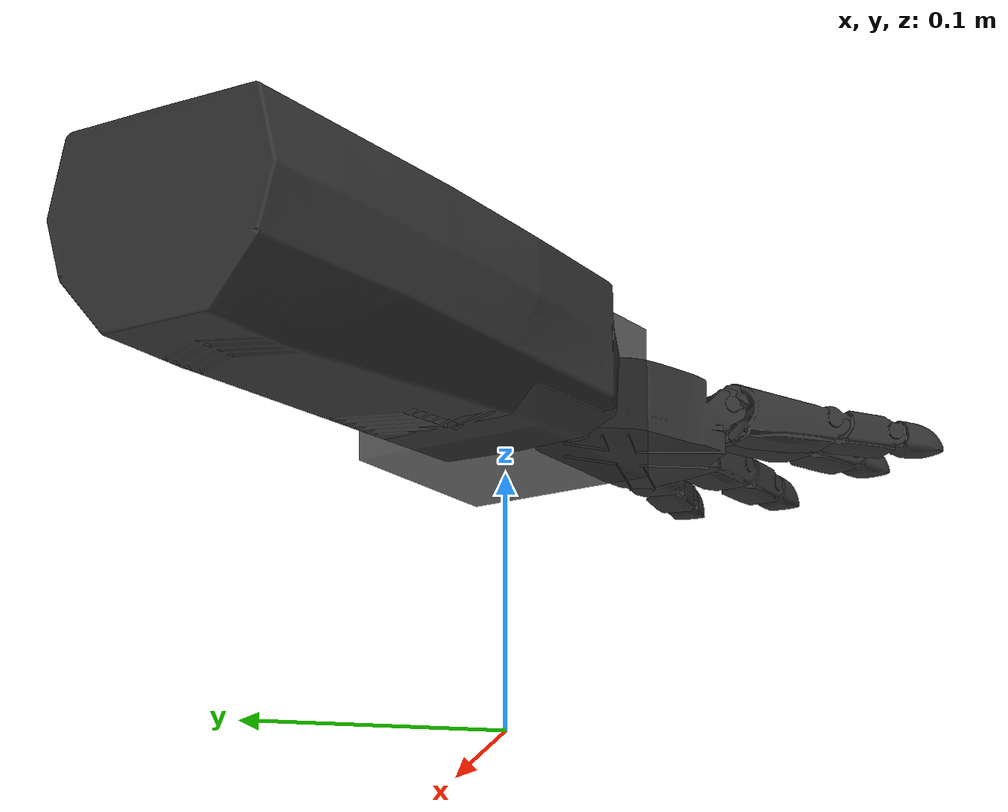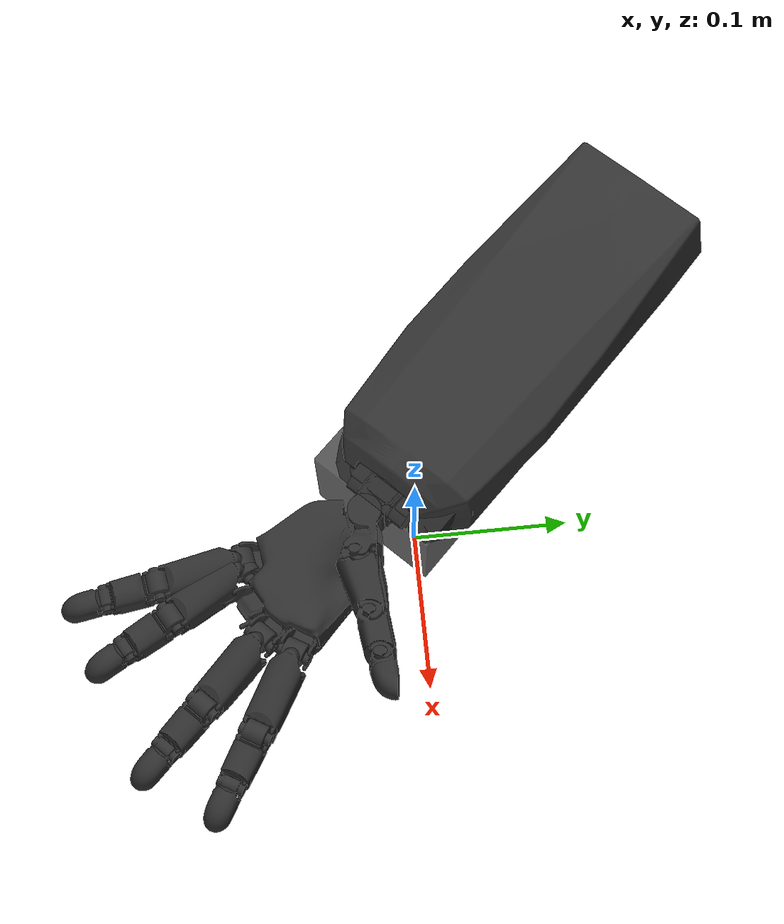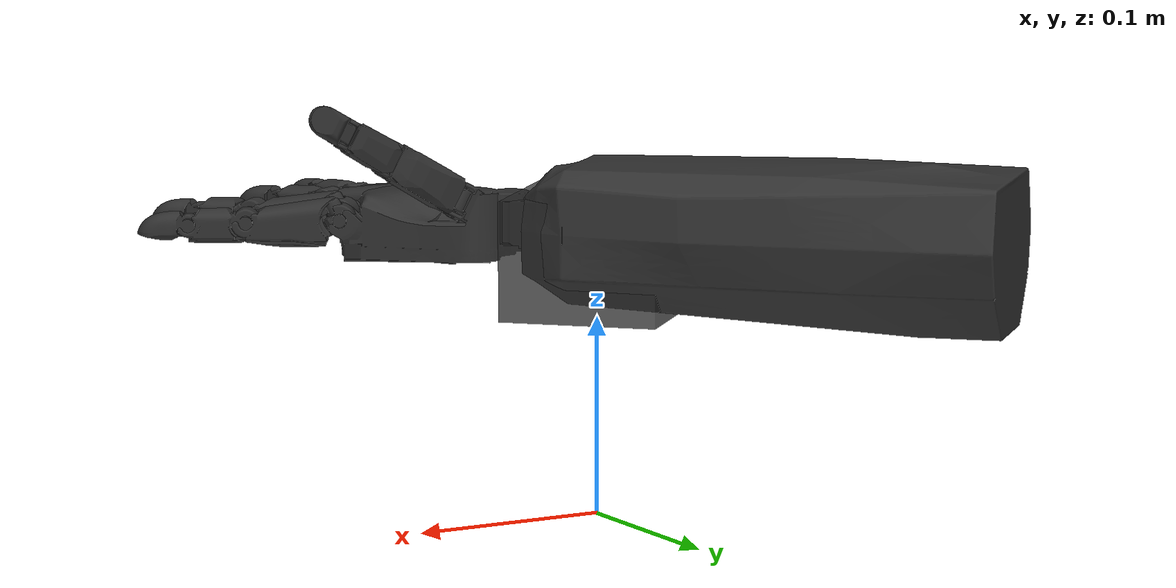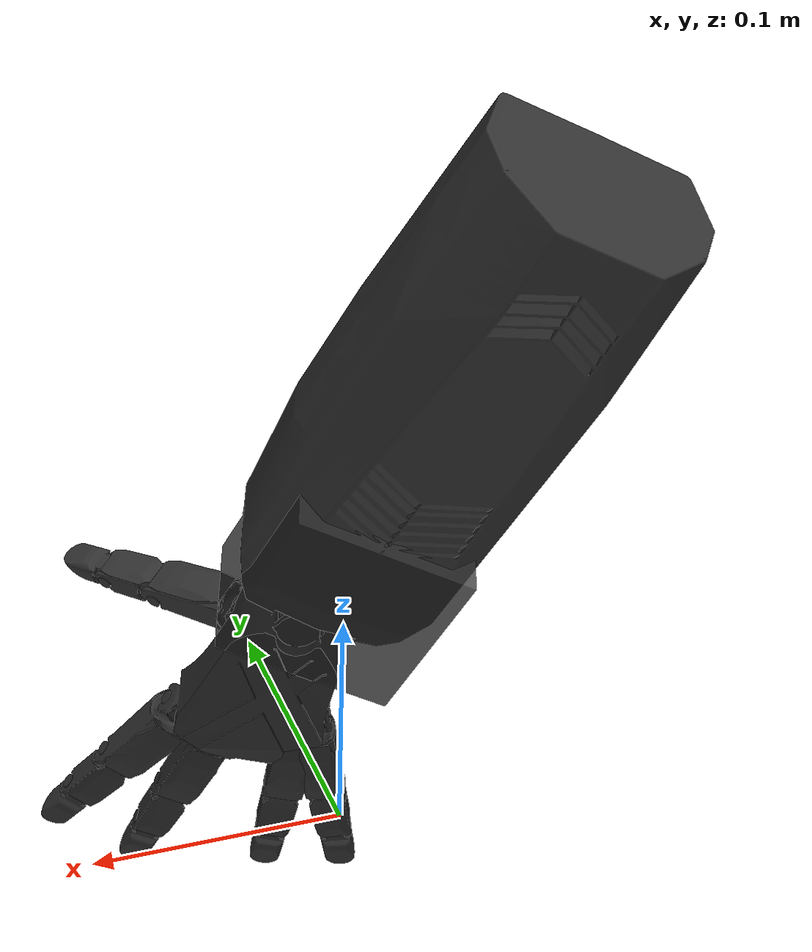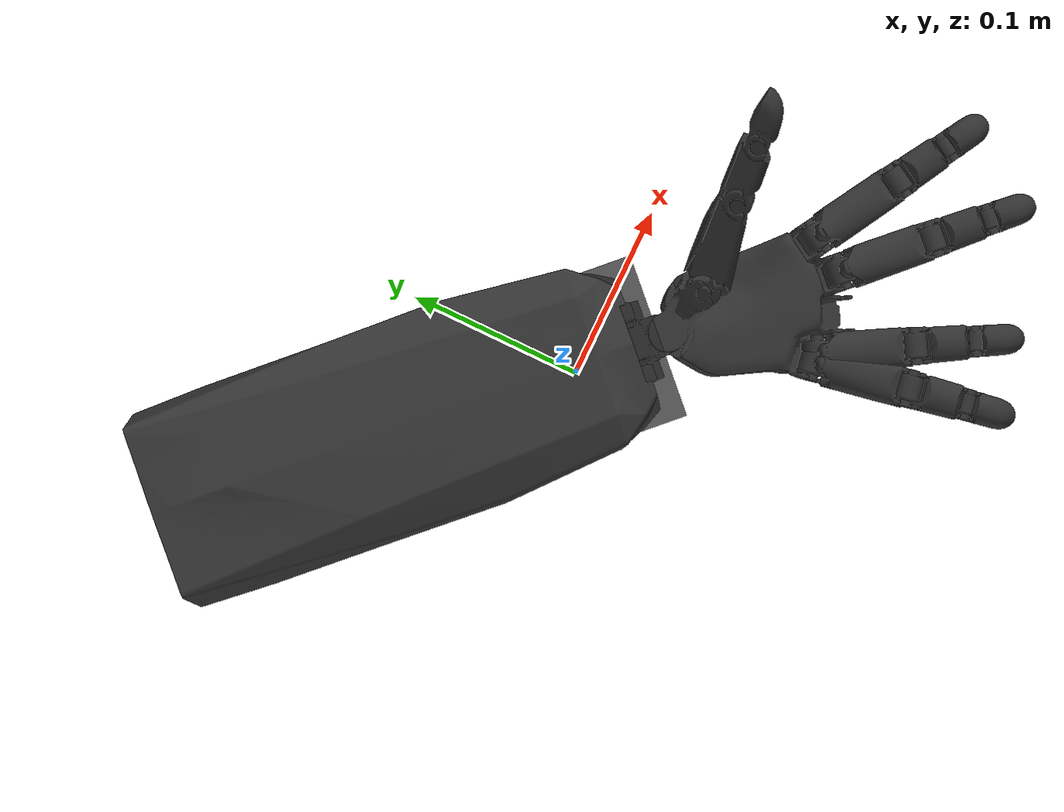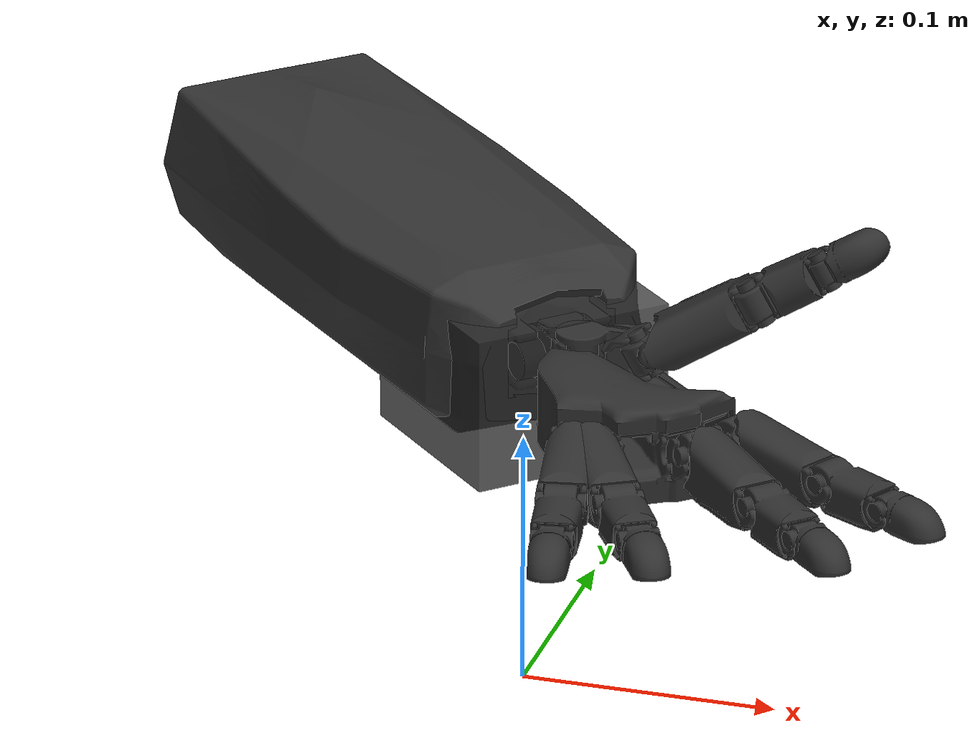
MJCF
<mujoco model="dphand_hand">
  <compiler angle="radian" autolimits="true"/>
  <option cone="elliptic" gravity="0 0 -9.81" impratio="10" timestep="0.002" solver="Newton" iterations="50"/>

  <default>
    <default class="plastic">
      <geom solimp="0.5 0.99 0.0001" solref="0.005 1" type="mesh" material="black"/>
    </default>
    <default class="jointconfig">
      <joint axis="1 0 0" damping="0.01" armature="0.0002" frictionloss="0.01"/>
    </default>
    <default class="DIPCtrl">
      <joint range="0 1.22173"/>
      <position kp="0.2" dampratio="0.9" ctrlrange="0 1.22173" forcerange="-20.0 20.0"/>
    </default>
    <default class="PIPCtrl">
      <joint range="0 1.919862"/>
      <position kp="0.2" dampratio="0.9" ctrlrange="0 1.919862" forcerange="-20.063 20.063"/>
    </default>
    <default class="MCPCtrl">
      <joint range="-0.523599 1.570796"/>
      <position kp="0.2" dampratio="0.9" ctrlrange="-0.523599 1.570796" forcerange="-40.83 40.83"/>
    </default>
    <default class="MCP2Ctrl">
      <joint range="-0.610865 0.610865"/>
      <position kp="0.2" dampratio="0.9" ctrlrange="-0.610865 0.610865" forcerange="-20.45 20.45"/>
    </default>
  </default>

  <asset>
    <material name="black" rgba="0.1882 0.1882 0.1882 1"/>
    <material name="transparent_black" rgba="0.2 0.2 0.2 1" specular="0.5" shininess="0.25"/>

    <mesh name="Forearm" file="dphand/meshes_obj/Forearm.obj" scale="0.001 0.001 0.001"/>
    <mesh name="Wrist" file="dphand/meshes_obj/Wrist.obj" scale="0.001 0.001 0.001"/>
    <mesh name="Palm" file="dphand/meshes_obj/Palm.obj" scale="0.001 0.001 0.001"/>

    <mesh name="Thumb-MCP" file="dphand/meshes_obj/MCP.obj" scale="0.001 0.001 0.001"/>
    <mesh name="Thumb-PP" file="dphand/meshes_obj/PP.obj" scale="0.001 0.001 0.001"/>
    <mesh name="Thumb-PM" file="dphand/meshes_obj/PM.obj" scale="0.001 0.001 0.001"/>
    <mesh name="Thumb-PD" file="dphand/meshes_obj/PD.obj" scale="0.001 0.001 0.001"/>

    <mesh name="Index-MCP" file="dphand/meshes_obj/MCP.obj" scale="0.001 0.001 0.001"/>
    <mesh name="Index-PP" file="dphand/meshes_obj/PP.obj" scale="0.001 0.001 0.001"/>
    <mesh name="Index-PM" file="dphand/meshes_obj/PM.obj" scale="0.001 0.001 0.001"/>
    <mesh name="Index-PD" file="dphand/meshes_obj/PD.obj" scale="0.001 0.001 0.001"/>

    <mesh name="Middle-MCP" file="dphand/meshes_obj/MCP.obj" scale="0.001 0.001 0.001"/>
    <mesh name="Middle-PP" file="dphand/meshes_obj/PP.obj" scale="0.001 0.001 0.001"/>
    <mesh name="Middle-PM" file="dphand/meshes_obj/PM.obj" scale="0.001 0.001 0.001"/>
    <mesh name="Middle-PD" file="dphand/meshes_obj/PD.obj" scale="0.001 0.001 0.001"/>

    <mesh name="Ring-MCP" file="dphand/meshes_obj/MCP.obj" scale="0.001 0.001 0.001"/>
    <mesh name="Ring-PP" file="dphand/meshes_obj/PP.obj" scale="0.001 0.001 0.001"/>
    <mesh name="Ring-PM" file="dphand/meshes_obj/PM.obj" scale="0.001 0.001 0.001"/>
    <mesh name="Ring-PD" file="dphand/meshes_obj/PD.obj" scale="0.001 0.001 0.001"/>

    <mesh name="Little-MCP" file="dphand/meshes_obj/MCP.obj" scale="0.001 0.001 0.001"/>
    <mesh name="Little-PP" file="dphand/meshes_obj/PP.obj" scale="0.001 0.001 0.001"/>
    <mesh name="Little-PM" file="dphand/meshes_obj/PM.obj" scale="0.001 0.001 0.001"/>
    <mesh name="Little-PD" file="dphand/meshes_obj/PD.obj" scale="0.001 0.001 0.001"/>
  </asset>

  <worldbody>
    <light directional="true" pos="-0.5 0.5 5" dir="0 0 -1"/>
    <camera name="overview" pos="0.0 -0.6 0.4" quat="0.707 0 0 0.707" fovy="80"/>

    <body name="attachment" pos="0 0 0" quat="0.3826834 0 0 0.9238795">
      <site name="pinch" pos="0 0 0.147" euler="0 3.14159 -1.5708"/>
      <geom type="box" size="0.01 0.01 0.01" rgba="1.0 0.0 0.0 0.0"/>

      <body name="Forearm" pos="0.107 0 0.147" euler="3.14159 0 1.5708">
        <geom class="plastic" type="mesh" mesh="Forearm" material="transparent_black"/>
        <inertial mass="1.9453304463125118" pos="-2.6615378024531148e-08 0.009019289013986305 0.0032088635623812897" fullinertia="0.009066690743886285 0.002094541290341062 0.00960327727265748 -6.786222020669816e-09 -1.1843581789473546e-09 8.685478979449512e-05"/>

        <body name="Wrist" pos="-5.329070518200751e-17 0.13654999999999984 -1.7763568394002505e-17" euler="-3.141592653589793 7.41212194690677e-32 -3.141592653589793">
          <joint class="jointconfig" name="Forearm_Wrist-Flexion" type="hinge" axis="0.9999999999999922 -8.887205207863613e-16 -4.3835946866997966e-16" pos="0.020000023862298447 1.7202427902594974e-07 1.7511521353289145e-07" range="-1.047198 1.047198" damping="2.0"/>
          <geom type="box" pos="0 -0.03 -0.015" size="0.04 0.04 0.03" rgba="0.2 0.2 0.2 0.8"/>
          <geom class="plastic" type="mesh" mesh="Wrist"/>
          <inertial mass="0.02656214079320285" pos="-1.69243593868272e-07 0.0016472458767444085 -1.6800554081391377e-06" fullinertia="2.0813142204422996e-06 4.359133919833236e-06 3.936873235039729e-06 -4.4040114384845307e-11 -1.131996854421492e-08 -5.300701354629199e-10"/>
          <camera name="wrist_cam" pos="0.0 -0.05 0.06" euler="1.5708 0 0" fovy="90"/>

          <body name="Palm" pos="0.01129099357241001 0.07971340504264361 0.043586459565069006" euler="3.141592653589793 -5.645033986231014e-06 -3.141592653589793">
            <joint class="jointconfig" name="Wrist_Wrist-Abduction" type="hinge" axis="5.645033985756887e-06 3.1918911957973315e-16 -0.9999999999840592" pos="0.011290782654479357 -0.06471323301836342 0.033136348187234654" range="-0.872665 0.523599" damping="0.1"/>
            <geom class="plastic" type="mesh" mesh="Palm"/>
            <inertial mass="0.2602111705177352" pos="0.008366751647868122 -0.02196163963553714 0.050750200275004716" fullinertia="0.00016809656398654498 9.383212552094538e-05 0.0002082113956576322 3.3379116774949452e-06 -8.329607410925668e-07 -6.439751497203951e-06"/>

            <body name="Thumb-MCP" pos="0.06646453612762752 -0.006132543067662581 0.23216861852976048" euler="0.8433678826770468 -0.7227359898922351 1.0799202183467054">
              <joint class="jointconfig" name="Palm_Thumb-MCP-Flexion" type="hinge" axis="0.9999993741212565 -1.9773373993725585e-08 2.7577507161202774e-07" pos="-0.19100048404368228 0.008500111311707255 -0.05328147048432252" range="-0.523599 1.570796"/>
              <geom class="plastic" type="mesh" mesh="Thumb-MCP"/>
              <inertial mass="0.005036994326199342" pos="-0.20000003939517735 0.00771726400998568 -0.05238245453895492" fullinertia="1.2970868632662727e-07 1.6007173878014266e-07 1.5900576781080497e-07 1.9696295556984942e-13 -5.666079262914197e-13 -1.4577138745808807e-08"/>

              <body name="Thumb-PP" pos="-0.1999099137026213 -8.975787161681125e-05 -0.09186663199430434" euler="1.5707964398014924 -4.440892098500623e-16 -3.1415926535897927">
                <joint class="jointconfig" name="Thumb-MCP_Thumb-MCP-Abduction" type="hinge" axis="1.2682376226980097e-07 -0.4999997811126733 0.8660249336764163" pos="9.00146861002862e-05 -0.03683519983393464 -0.011620692906578887" range="-0.610865 0.610865"/>
                <geom class="plastic" type="mesh" mesh="Thumb-PP"/>
                <inertial mass="0.03708856624254697" pos="9.030301616385424e-05 -0.014531198977560479 -0.005880351460123734" fullinertia="5.753639912619248e-06 2.3941975919820493e-06 5.462290746232934e-06 -1.8478345177537705e-10 -9.173268363720042e-11 -6.425808363890366e-07"/>

                <body name="Thumb-PM" pos="9.00862973793437e-05 0.0006333688633876378 -8.975695249269222e-05" euler="1.570796326794897 -3.885780586188048e-16 -3.1415926535897922">
                  <joint class="jointconfig" name="Thumb-PP_Thumb-PIP-Flexion" type="hinge" axis="0.9999993741212565 -1.9773343240547803e-08 2.757750738047182e-07" pos="0.009000053397670283 0.007500012297346963 -0.007499959122900093" range="0 1.919862"/>
                  <geom class="plastic" type="mesh" mesh="Thumb-PM"/>
                  <inertial mass="0.020227223379927373" pos="-1.848580694421842e-07 0.005195827579475683 -0.0187189494907972" fullinertia="1.9967071755990337e-06 2.0011051517931557e-06 8.144475144013871e-07 -8.221468741961615e-12 3.2138099137484784e-12 -1.7160624501976697e-07"/>

                  <body name="Thumb-PD" pos="2.0428103653102883e-15 0.006000000000000014 -0.030374007257449022" euler="-0.0 -5.30131494258512e-15 1.6653345369377338e-16">
                    <joint class="jointconfig" name="Thumb-PM_Thumb-DIP-Flexion" type="hinge" axis="0.9999993741212571 -1.9773343351570105e-08 2.7577506855891443e-07" pos="0.007500185506918168 -1.0135717486668694e-08 -0.005999648442277302" range="0 1.22173"/>
                    <geom class="plastic" type="mesh" mesh="Thumb-PD"/>
                    <inertial mass="0.008221233655296712" pos="4.78256383562841e-06 -0.001059520123761583 -0.014235123790328312" fullinertia="5.898243383359009e-07 6.159934754370924e-07 2.2995080143593457e-07 -4.951643830232875e-11 -3.519078467407562e-10 -5.015937733979458e-08"/>
                    <camera name="thumb_tip_cam" pos="0 0.005 -0.02" quat="0.7071068 0.7071068 0 0" fovy="90"/>
                  </body>
                </body>
              </body>
            </body>

            <body name="Index-MCP" pos="-0.17611858726643287 0.01860627582114212 0.0520866274849916" euler="1.5707752592412532 -0.2617993878586258 -3.141592653589793">
              <joint class="jointconfig" name="Palm_Index-MCP-Flexion" type="hinge" axis="1.0000001561184753 1.9302374834874957e-12 8.852540064885339e-08" pos="-0.1910001700693438 0.00850017511903284 -0.05328168114121647" range="-0.523599 1.570796"/>
              <geom class="plastic" type="mesh" mesh="Index-MCP"/>
              <inertial mass="0.005036994326199342" pos="-0.20000003939517752 0.007717264009985939 -0.052382454538954695" fullinertia="1.297086863268387e-07 1.6007173878164116e-07 1.5900576781229262e-07 1.9696271334408768e-13 -5.666087175359978e-13 -1.4577138745714998e-08"/>

              <body name="Index-PP" pos="-0.19990991370262104 -8.975787161696003e-05 -0.09186663199430434" euler="1.5707964398014924 -6.468858380816871e-16 -3.141592653589793">
                <joint class="jointconfig" name="Index-MCP_Index-MCP-Abduction" type="hinge" axis="-2.6781389336760775e-07 -0.5000005133392491 0.8660250383253366" pos="8.999934378633653e-05 -0.03683495104841343 -0.011620898985207259" range="-0.610865 0.610865"/>
                <geom class="plastic" type="mesh" mesh="Index-PP"/>
                <inertial mass="0.03708856624254697" pos="9.030301616390303e-05 -0.014531198977560611 -0.005880351460123762" fullinertia="5.753639912618303e-06 2.3941975919821154e-06 5.4622907462326845e-06 -1.8478345217030616e-10 -9.17326836966934e-11 -6.425808363889253e-07"/>

                <body name="Index-PM" pos="9.008629737936147e-05 0.0006333688633875312 -8.97569524926678e-05" euler="1.5707963267948966 1.1102230246251568e-16 -3.1415926535897927">
                  <joint class="jointconfig" name="Index-PP_Index-PIP-Flexion" type="hinge" axis="1.0000001561184766 1.9402182929335594e-12 8.852540045456436e-08" pos="0.009000288994289127 0.007500156170805646 -0.007499409252653209" range="0 1.919862"/>
                  <geom class="plastic" type="mesh" mesh="Index-PM"/>
                  <inertial mass="0.020227223379927373" pos="-1.848580693832036e-07 0.005195827579475731 -0.01871894949079733" fullinertia="1.9967071755979597e-06 2.0011051517931565e-06 8.144475144015177e-07 -8.221468830239125e-12 3.2138093862587105e-12 -1.716062450195863e-07"/>

                  <body name="Index-PD" pos="1.838529328779259e-15 0.005999999999999879 -0.030374007257448526" euler="4.1619810896287264e-17 -5.8009153036664374e-15 5.659365933784879e-17">
                    <joint class="jointconfig" name="Index-PM_Index-DIP-Flexion" type="hinge" axis="1.000000156118477 1.9401617001212545e-12 8.852539465364906e-08" pos="0.007500340150546129 -4.768566481272736e-07 -0.005999444697657891" range="0 1.22173"/>
                    <geom class="plastic" type="mesh" mesh="Index-PD"/>
                    <inertial mass="0.008221233655296712" pos="4.782563835702136e-06 -0.0010595201237615741 -0.014235123790328466" fullinertia="5.898243383354302e-07 6.159934754366981e-07 2.2995080143603772e-07 -4.951643833947085e-11 -3.519078468321299e-10 -5.0159377339789395e-08"/>
                    <camera name="index_tip_cam" pos="0 -0.015 0" quat="0.7071068 0.7071068 0 0" fovy="90"/>
                  </body>
                </body>
              </body>
            </body>

            <body name="Middle-MCP" pos="-0.18870930045441625 -0.029730502816816086 0.052085394207460056" euler="1.5707963284469457 -1.915701280528547e-18 -3.141587008555807">
              <joint class="jointconfig" name="Palm_Middle-MCP-Flexion" type="hinge" axis="0.9999999999999927 -5.144259135054388e-16 1.0216509586550925e-14" pos="-0.190999976137697 0.00850017511521407 -0.053282269784410745" range="-0.523599 1.570796"/>
              <geom class="plastic" type="mesh" mesh="Middle-MCP"/>
              <inertial mass="0.005036994326199342" pos="-0.20000003939517802 0.00771726400998593 -0.052382454538954855" fullinertia="1.2970868632693096e-07 1.6007173878119713e-07 1.590057678117707e-07 1.9696273647388832e-13 -5.66608568171624e-13 -1.4577138745737425e-08"/>

              <body name="Middle-PP" pos="-0.1999099137026208 -8.97578716168801e-05 -0.09186663199430463" euler="1.5707964398014933 -1.6303776237407785e-15 3.141592653589792">
                <joint class="jointconfig" name="Middle-MCP_Middle-MCP-Abduction" type="hinge" axis="2.108308406328883e-15 -0.5000000964358128 0.8660249443227128" pos="9.006243507892484e-05 -0.03683436090165744 -0.011620937152247808" range="-0.610865 0.610865"/>
                <geom class="plastic" type="mesh" mesh="Middle-PP"/>
                <inertial mass="0.03708856624254697" pos="9.030301616385639e-05 -0.014531198977560526 -0.005880351460123758" fullinertia="5.753639912620901e-06 2.3941975919821687e-06 5.4622907462329505e-06 -1.8478345192100178e-10 -9.173268371915364e-11 -6.425808363889447e-07"/>

                <body name="Middle-PM" pos="9.008629737941476e-05 0.0006333688633878154 -8.975695249266335e-05" euler="1.570796326794896 3.5060138694304263e-15 3.141592653589793">
                  <joint class="jointconfig" name="Middle-PP_Middle-PIP-Flexion" type="hinge" axis="0.9999999999999915 1.2523998844324682e-15 8.290647917111368e-15" pos="0.009000023862300784 0.007500175192364041 -0.00750026978608391" range="0 1.919862"/>
                  <geom class="plastic" type="mesh" mesh="Middle-PM"/>
                  <inertial mass="0.020227223379927373" pos="-1.848580693926345e-07 0.005195827579475707 -0.018718949490797342" fullinertia="1.9967071755999316e-06 2.001105151793533e-06 8.14447514401632e-07 -8.221468839957543e-12 3.2138097021157473e-12 -1.716062450195371e-07"/>

                  <body name="Middle-PD" pos="1.936228954946273e-15 0.00599999999999997 -0.03037400725744824" euler="-1.5265541442305315e-16 -5.723529200691246e-15 2.7755575612648e-17">
                    <joint class="jointconfig" name="Middle-PM_Middle-DIP-Flexion" type="hinge" axis="0.9999999999999903 1.224644308819821e-15 2.567118716420166e-15" pos="0.007500023862299049 1.719771129834434e-07 -0.0060002623616039015" range="0 1.22173"/>
                    <geom class="plastic" type="mesh" mesh="Middle-PD"/>
                    <inertial mass="0.008221233655296712" pos="4.782563835693732e-06 -0.0010595201237615774 -0.014235123790328407" fullinertia="5.8982433833592e-07 6.159934754369468e-07 2.2995080143610427e-07 -4.9516438339518763e-11 -3.5190784665454645e-10 -5.0159377339798586e-08"/>
                    <camera name="middle_tip_cam" pos="0 -0.015 0" quat="0.7071068 0.7071068 0 0" fovy="90"/>
                  </body>
                </body>
              </body>
            </body>

            <body name="Ring-MCP" pos="-0.20147084220365745 -0.10286936134224058 0.05208510939768224" euler="1.5707753065634405 0.2617993249388581 3.141592653589791">
              <joint class="jointconfig" name="Palm_Ring-MCP-Flexion" type="hinge" axis="1.0000001561184746 1.9219566936324e-12 -8.852537845319954e-08" pos="-0.1909997770478287 0.00850017511633323 -0.053281881215955084" range="-0.523599 1.570796"/>
              <geom class="plastic" type="mesh" mesh="Ring-MCP"/>
              <inertial mass="0.005036994326199342" pos="-0.20000003939517674 0.007717264009985926 -0.05238245453895482" fullinertia="1.2970868632673766e-07 1.600717387820924e-07 1.590057678123733e-07 1.9696271814887993e-13 -5.666086820358995e-13 -1.4577138745797945e-08"/>

              <body name="Ring-PP" pos="-0.19990991370262185 -8.975787161694627e-05 -0.0918666319943044" euler="1.5707964398014924 -1.0034607166558131e-15 3.1415926535897922">
                <joint class="jointconfig" name="Ring-MCP_Ring-MCP-Abduction" type="hinge" axis="-5.75689985140051e-08 -0.500000158685074 0.866025178096726" pos="9.00020603155045e-05 -0.036834940889932576 -0.011620925073040616" range="-0.610865 0.610865"/>
                <geom class="plastic" type="mesh" mesh="Ring-PP"/>
                <inertial mass="0.03708856624254697" pos="9.030301616385894e-05 -0.014531198977560463 -0.005880351460123719" fullinertia="5.753639912620205e-06 2.3941975919822116e-06 5.46229074623249e-06 -1.8478345182151852e-10 -9.17326837106558e-11 -6.425808363889192e-07"/>

                <body name="Ring-PM" pos="9.008629737941309e-05 0.0006333688633878326 -8.975695249266334e-05" euler="1.5707963267948966 2.886579864025407e-15 3.141592653589793">
                  <joint class="jointconfig" name="Ring-PP_Ring-PIP-Flexion" type="hinge" axis="1.0000001561184748 1.9219578033436878e-12 -8.852537849990405e-08" pos="0.00899988855791442 0.007500194077943506 -0.007500269456869411" range="0 1.919862"/>
                  <geom class="plastic" type="mesh" mesh="Ring-PM"/>
                  <inertial mass="0.020227223379927373" pos="-1.848580693918772e-07 0.0051958275794757175 -0.018718949490797335" fullinertia="1.9967071755994534e-06 2.0011051517932522e-06 8.144475144016588e-07 -8.221468843985106e-12 3.2138096393098035e-12 -1.716062450195736e-07"/>

                  <body name="Ring-PD" pos="2.113864638886298e-15 0.005999999999999881 -0.030374007257448384" euler="-1.6658427567060916e-16 -5.828670879282087e-15 -1.1912163150416135e-16">
                    <joint class="jointconfig" name="Ring-PM_Ring-DIP-Flexion" type="hinge" axis="1.0000001561184741 1.922076924128159e-12 -8.852538432857493e-08" pos="0.0074997407780687895 -1.7943064091345823e-07 -0.005999871204416982" range="0 1.22173"/>
                    <geom class="plastic" type="mesh" mesh="Ring-PD"/>
                    <inertial mass="0.008221233655296712" pos="4.782563835709075e-06 -0.0010595201237615654 -0.014235123790328317" fullinertia="5.898243383363355e-07 6.159934754374612e-07 2.299508014361174e-07 -4.951643834537826e-11 -3.5190784669062244e-10 -5.015937733981168e-08"/>
                    <camera name="ring_tip_cam" pos="0 -0.015 0" quat="0.7071068 0.7071068 0 0" fovy="90"/>
                  </body>
                </body>
              </body>
            </body>

            <body name="Little-MCP" pos="-0.15875085210786632 -0.16055826110610188 0.05208503902128425" euler="1.5708043887389316 0.610865238220759 3.1415926535897927">
              <joint class="jointconfig" name="Palm_Little-MCP-Flexion" type="hinge" axis="0.9999997134398921 3.2678340827589636e-12 -3.320347174984306e-07" pos="-0.1909997506940443 0.008500175115955124 -0.05328193162573373" range="-0.523599 1.570796"/>
              <geom class="plastic" type="mesh" mesh="Little-MCP"/>
              <inertial mass="0.005036994326199342" pos="-0.20000003939517627 0.007717264009985934 -0.052382454538954584" fullinertia="1.2970868632661083e-07 1.6007173878179342e-07 1.5900576781231374e-07 1.9696272214941319e-13 -5.666084463200185e-13 -1.4577138745881507e-08"/>

              <body name="Little-PP" pos="-0.1999099137026218 -8.975787161693339e-05 -0.09186663199430449" euler="1.5707964398014929 -1.5032014194049508e-15 3.1415926535897922">
                <joint class="jointconfig" name="Little-MCP_Little-MCP-Abduction" type="hinge" axis="-8.52921952787522e-08 -0.500000033298895 0.8660248644462071" pos="9.032653567493665e-05 -0.03683471032494446 -0.011620954373351812" range="-0.610865 0.610865"/>
                <geom class="plastic" type="mesh" mesh="Little-PP"/>
                <inertial mass="0.03708856624254697" pos="9.030301616387224e-05 -0.014531198977560398 -0.005880351460123711" fullinertia="5.7536399126192465e-06 2.3941975919822128e-06 5.462290746232142e-06 -1.8478345201614616e-10 -9.17326837131716e-11 -6.42580836388941e-07"/>

                <body name="Little-PM" pos="9.008629737948581e-05 0.0006333688633876734 -8.975695249266335e-05" euler="1.5707963267948961 3.108624468950432e-15 3.141592653589793">
                  <joint class="jointconfig" name="Little-PP_Little-PIP-Flexion" type="hinge" axis="0.9999997134398901 3.232061225948125e-12 -3.3203471960785436e-07" pos="0.00900005084200259 0.007499634902912834 -0.007499625246447951" range="0 1.919862"/>
                  <geom class="plastic" type="mesh" mesh="Little-PM"/>
                  <inertial mass="0.020227223379927373" pos="-1.8485806939708138e-07 0.005195827579475688 -0.01871894949079721" fullinertia="1.9967071755988914e-06 2.0011051517922976e-06 8.144475144015422e-07 -8.221468839812521e-12 3.2138098415389197e-12 -1.7160624501956656e-07"/>

                  <body name="Little-PD" pos="1.8474111129762605e-15 0.005999999999999897 -0.030374007257449237" euler="4.161981089628736e-17 -5.995204332975853e-15 6.189413741188206e-16">
                    <joint class="jointconfig" name="Little-PM_Little-DIP-Flexion" type="hinge" axis="0.9999997134398901 3.23144228287994e-12 -3.320347256030587e-07" pos="0.007500029952810935 -8.418228709658533e-08 -0.006000154141074002" range="0 1.22173"/>
                    <geom class="plastic" type="mesh" mesh="Little-PD"/>
                    <inertial mass="0.008221233655296712" pos="4.78256383570734e-06 -0.001059520123761557 -0.014235123790328267" fullinertia="5.898243383361532e-07 6.159934754376649e-07 2.2995080143613193e-07 -4.951643834013244e-11 -3.519078466670908e-10 -5.015937733978922e-08"/>
                    <camera name="little_tip_cam" pos="0 -0.015 0" quat="0.7071068 0.7071068 0 0" fovy="90"/>
                  </body>
                </body>
              </body>
            </body>
          </body>
        </body>
      </body>
    </body>
  </worldbody>

  <contact>
    <exclude name="Wrist_Forearm-exclude" body1="Wrist" body2="Forearm"/>
    <exclude name="Palm_Forearm-exclude" body1="Palm" body2="Forearm"/>
    <exclude name="Thumb-PP-exclude" body1="Thumb-PP" body2="Palm"/>
    <exclude name="Index-PP-exclude" body1="Index-PP" body2="Palm"/>
    <exclude name="Middle-PP-exclude" body1="Middle-PP" body2="Palm"/>
    <exclude name="Ring-PP-exclude" body1="Ring-PP" body2="Palm"/>
    <exclude name="Little-PP-exclude" body1="Little-PP" body2="Palm"/>
  </contact>

  <actuator>
    <position name="Wrist" joint="Forearm_Wrist-Flexion" ctrlrange="-1.047198 1.047198" kp="50" forcerange="-500 500"/>
    <position name="Palm" joint="Wrist_Wrist-Abduction" ctrlrange="-0.523598776 0.523598776" kp="50" forcerange="-500 500"/>

    <position class="MCPCtrl" name="Thumb-MCP" joint="Palm_Thumb-MCP-Flexion" kp="0.2" dampratio="0.9"/>
    <position class="MCP2Ctrl" name="Thumb-PP" joint="Thumb-MCP_Thumb-MCP-Abduction" kp="0.2" dampratio="0.9"/>
    <position class="PIPCtrl" name="Thumb-PM" joint="Thumb-PP_Thumb-PIP-Flexion" kp="0.2" dampratio="0.9"/>
    <position class="DIPCtrl" name="Thumb-PD" joint="Thumb-PM_Thumb-DIP-Flexion" kp="0.2" dampratio="0.9"/>

    <position class="MCPCtrl" name="Index-MCP" joint="Palm_Index-MCP-Flexion"/>
    <position class="MCP2Ctrl" name="Index-PP" joint="Index-MCP_Index-MCP-Abduction"/>
    <position class="PIPCtrl" name="Index-PM" joint="Index-PP_Index-PIP-Flexion"/>
    <position class="DIPCtrl" name="Index-PD" joint="Index-PM_Index-DIP-Flexion"/>

    <position class="MCPCtrl" name="Middle-MCP" joint="Palm_Middle-MCP-Flexion"/>
    <position class="MCP2Ctrl" name="Middle-PP" joint="Middle-MCP_Middle-MCP-Abduction"/>
    <position class="PIPCtrl" name="Middle-PM" joint="Middle-PP_Middle-PIP-Flexion"/>
    <position class="DIPCtrl" name="Middle-PD" joint="Middle-PM_Middle-DIP-Flexion"/>

    <position class="MCPCtrl" name="Ring-MCP" joint="Palm_Ring-MCP-Flexion"/>
    <position class="MCP2Ctrl" name="Ring-PP" joint="Ring-MCP_Ring-MCP-Abduction"/>
    <position class="PIPCtrl" name="Ring-PM" joint="Ring-PP_Ring-PIP-Flexion"/>
    <position class="DIPCtrl" name="Ring-PD" joint="Ring-PM_Ring-DIP-Flexion"/>

    <position class="MCPCtrl" name="Little-MCP" joint="Palm_Little-MCP-Flexion"/>
    <position class="MCP2Ctrl" name="Little-PP" joint="Little-MCP_Little-MCP-Abduction"/>
    <position class="PIPCtrl" name="Little-PM" joint="Little-PP_Little-PIP-Flexion"/>
    <position class="DIPCtrl" name="Little-PD" joint="Little-PM_Little-DIP-Flexion"/>
  </actuator>

  <sensor>
    <framepos name="tcp_pos" objtype="site" objname="pinch"/>
    <framequat name="tcp_quat" objtype="site" objname="pinch"/>
    <framelinvel name="tcp_linvel" objtype="site" objname="pinch"/>
    <frameangvel name="tcp_angvel" objtype="site" objname="pinch"/>
  </sensor>
</mujoco>
